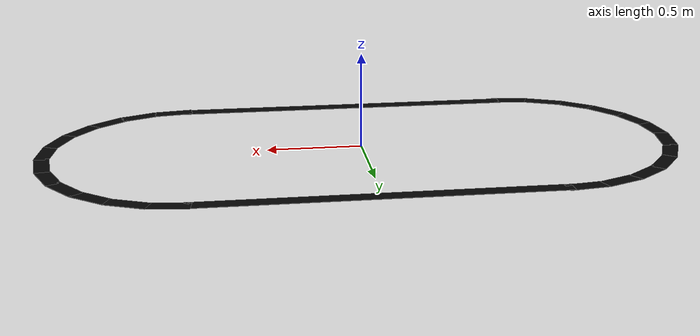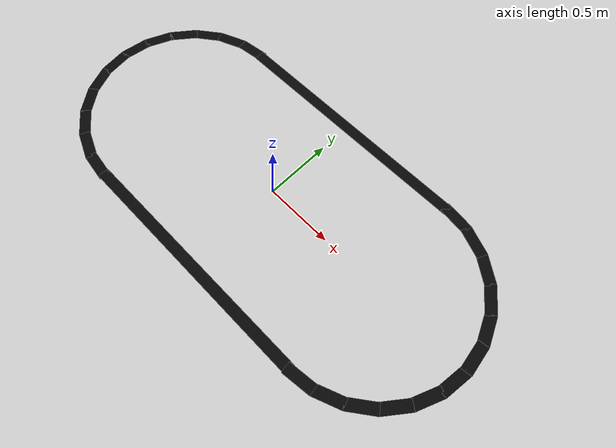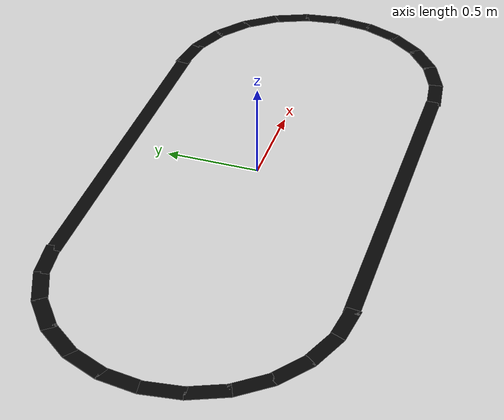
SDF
<?xml version="1.0"?>
<sdf version="1.8">
  <model name="line_track_racetrack">
    <static>true</static>
    <link name="track">
      <visual name='seg_000'>
        <pose>0.000000 0.750000 0.001000 0.000000 0.000000 0.000000</pose>
        <geometry>
          <box>
            <size>1.854000 0.080000 0.002000</size>
          </box>
        </geometry>
      <material>
        <ambient>0.02 0.02 0.02 1</ambient>
        <diffuse>0.02 0.02 0.02 1</diffuse>
        <specular>0.0 0.0 0.0 1</specular>
      </material>
      </visual>
      <visual name='seg_001'>
        <pose>0.000000 -0.750000 0.001000 0.000000 0.000000 3.141593</pose>
        <geometry>
          <box>
            <size>1.854000 0.080000 0.002000</size>
          </box>
        </geometry>
      <material>
        <ambient>0.02 0.02 0.02 1</ambient>
        <diffuse>0.02 0.02 0.02 1</diffuse>
        <specular>0.0 0.0 0.0 1</specular>
      </material>
      </visual>
      <visual name='seg_002'>
        <pose>0.997895 -0.743584 0.001000 0.000000 0.000000 0.130900</pose>
        <geometry>
          <box>
            <size>0.212058 0.080000 0.002000</size>
          </box>
        </geometry>
      <material>
        <ambient>0.02 0.02 0.02 1</ambient>
        <diffuse>0.02 0.02 0.02 1</diffuse>
        <specular>0.0 0.0 0.0 1</specular>
      </material>
      </visual>
      <visual name='seg_003'>
        <pose>1.187013 -0.692910 0.001000 0.000000 0.000000 0.392699</pose>
        <geometry>
          <box>
            <size>0.212058 0.080000 0.002000</size>
          </box>
        </geometry>
      <material>
        <ambient>0.02 0.02 0.02 1</ambient>
        <diffuse>0.02 0.02 0.02 1</diffuse>
        <specular>0.0 0.0 0.0 1</specular>
      </material>
      </visual>
      <visual name='seg_004'>
        <pose>1.356571 -0.595015 0.001000 0.000000 0.000000 0.654498</pose>
        <geometry>
          <box>
            <size>0.212058 0.080000 0.002000</size>
          </box>
        </geometry>
      <material>
        <ambient>0.02 0.02 0.02 1</ambient>
        <diffuse>0.02 0.02 0.02 1</diffuse>
        <specular>0.0 0.0 0.0 1</specular>
      </material>
      </visual>
      <visual name='seg_005'>
        <pose>1.495015 -0.456571 0.001000 0.000000 0.000000 0.916298</pose>
        <geometry>
          <box>
            <size>0.212058 0.080000 0.002000</size>
          </box>
        </geometry>
      <material>
        <ambient>0.02 0.02 0.02 1</ambient>
        <diffuse>0.02 0.02 0.02 1</diffuse>
        <specular>0.0 0.0 0.0 1</specular>
      </material>
      </visual>
      <visual name='seg_006'>
        <pose>1.592910 -0.287013 0.001000 0.000000 0.000000 1.178097</pose>
        <geometry>
          <box>
            <size>0.212058 0.080000 0.002000</size>
          </box>
        </geometry>
      <material>
        <ambient>0.02 0.02 0.02 1</ambient>
        <diffuse>0.02 0.02 0.02 1</diffuse>
        <specular>0.0 0.0 0.0 1</specular>
      </material>
      </visual>
      <visual name='seg_007'>
        <pose>1.643584 -0.097895 0.001000 0.000000 0.000000 1.439897</pose>
        <geometry>
          <box>
            <size>0.212058 0.080000 0.002000</size>
          </box>
        </geometry>
      <material>
        <ambient>0.02 0.02 0.02 1</ambient>
        <diffuse>0.02 0.02 0.02 1</diffuse>
        <specular>0.0 0.0 0.0 1</specular>
      </material>
      </visual>
      <visual name='seg_008'>
        <pose>1.643584 0.097895 0.001000 0.000000 0.000000 1.701696</pose>
        <geometry>
          <box>
            <size>0.212058 0.080000 0.002000</size>
          </box>
        </geometry>
      <material>
        <ambient>0.02 0.02 0.02 1</ambient>
        <diffuse>0.02 0.02 0.02 1</diffuse>
        <specular>0.0 0.0 0.0 1</specular>
      </material>
      </visual>
      <visual name='seg_009'>
        <pose>1.592910 0.287013 0.001000 0.000000 0.000000 1.963495</pose>
        <geometry>
          <box>
            <size>0.212058 0.080000 0.002000</size>
          </box>
        </geometry>
      <material>
        <ambient>0.02 0.02 0.02 1</ambient>
        <diffuse>0.02 0.02 0.02 1</diffuse>
        <specular>0.0 0.0 0.0 1</specular>
      </material>
      </visual>
      <visual name='seg_010'>
        <pose>1.495015 0.456571 0.001000 0.000000 0.000000 2.225295</pose>
        <geometry>
          <box>
            <size>0.212058 0.080000 0.002000</size>
          </box>
        </geometry>
      <material>
        <ambient>0.02 0.02 0.02 1</ambient>
        <diffuse>0.02 0.02 0.02 1</diffuse>
        <specular>0.0 0.0 0.0 1</specular>
      </material>
      </visual>
      <visual name='seg_011'>
        <pose>1.356571 0.595015 0.001000 0.000000 0.000000 2.487094</pose>
        <geometry>
          <box>
            <size>0.212058 0.080000 0.002000</size>
          </box>
        </geometry>
      <material>
        <ambient>0.02 0.02 0.02 1</ambient>
        <diffuse>0.02 0.02 0.02 1</diffuse>
        <specular>0.0 0.0 0.0 1</specular>
      </material>
      </visual>
      <visual name='seg_012'>
        <pose>1.187013 0.692910 0.001000 0.000000 0.000000 2.748894</pose>
        <geometry>
          <box>
            <size>0.212058 0.080000 0.002000</size>
          </box>
        </geometry>
      <material>
        <ambient>0.02 0.02 0.02 1</ambient>
        <diffuse>0.02 0.02 0.02 1</diffuse>
        <specular>0.0 0.0 0.0 1</specular>
      </material>
      </visual>
      <visual name='seg_013'>
        <pose>0.997895 0.743584 0.001000 0.000000 0.000000 3.010693</pose>
        <geometry>
          <box>
            <size>0.212058 0.080000 0.002000</size>
          </box>
        </geometry>
      <material>
        <ambient>0.02 0.02 0.02 1</ambient>
        <diffuse>0.02 0.02 0.02 1</diffuse>
        <specular>0.0 0.0 0.0 1</specular>
      </material>
      </visual>
      <visual name='seg_014'>
        <pose>-0.997895 0.743584 0.001000 0.000000 0.000000 3.272492</pose>
        <geometry>
          <box>
            <size>0.212058 0.080000 0.002000</size>
          </box>
        </geometry>
      <material>
        <ambient>0.02 0.02 0.02 1</ambient>
        <diffuse>0.02 0.02 0.02 1</diffuse>
        <specular>0.0 0.0 0.0 1</specular>
      </material>
      </visual>
      <visual name='seg_015'>
        <pose>-1.187013 0.692910 0.001000 0.000000 0.000000 3.534292</pose>
        <geometry>
          <box>
            <size>0.212058 0.080000 0.002000</size>
          </box>
        </geometry>
      <material>
        <ambient>0.02 0.02 0.02 1</ambient>
        <diffuse>0.02 0.02 0.02 1</diffuse>
        <specular>0.0 0.0 0.0 1</specular>
      </material>
      </visual>
      <visual name='seg_016'>
        <pose>-1.356571 0.595015 0.001000 0.000000 0.000000 3.796091</pose>
        <geometry>
          <box>
            <size>0.212058 0.080000 0.002000</size>
          </box>
        </geometry>
      <material>
        <ambient>0.02 0.02 0.02 1</ambient>
        <diffuse>0.02 0.02 0.02 1</diffuse>
        <specular>0.0 0.0 0.0 1</specular>
      </material>
      </visual>
      <visual name='seg_017'>
        <pose>-1.495015 0.456571 0.001000 0.000000 0.000000 4.057891</pose>
        <geometry>
          <box>
            <size>0.212058 0.080000 0.002000</size>
          </box>
        </geometry>
      <material>
        <ambient>0.02 0.02 0.02 1</ambient>
        <diffuse>0.02 0.02 0.02 1</diffuse>
        <specular>0.0 0.0 0.0 1</specular>
      </material>
      </visual>
      <visual name='seg_018'>
        <pose>-1.592910 0.287013 0.001000 0.000000 0.000000 4.319690</pose>
        <geometry>
          <box>
            <size>0.212058 0.080000 0.002000</size>
          </box>
        </geometry>
      <material>
        <ambient>0.02 0.02 0.02 1</ambient>
        <diffuse>0.02 0.02 0.02 1</diffuse>
        <specular>0.0 0.0 0.0 1</specular>
      </material>
      </visual>
      <visual name='seg_019'>
        <pose>-1.643584 0.097895 0.001000 0.000000 0.000000 4.581489</pose>
        <geometry>
          <box>
            <size>0.212058 0.080000 0.002000</size>
          </box>
        </geometry>
      <material>
        <ambient>0.02 0.02 0.02 1</ambient>
        <diffuse>0.02 0.02 0.02 1</diffuse>
        <specular>0.0 0.0 0.0 1</specular>
      </material>
      </visual>
      <visual name='seg_020'>
        <pose>-1.643584 -0.097895 0.001000 0.000000 0.000000 4.843289</pose>
        <geometry>
          <box>
            <size>0.212058 0.080000 0.002000</size>
          </box>
        </geometry>
      <material>
        <ambient>0.02 0.02 0.02 1</ambient>
        <diffuse>0.02 0.02 0.02 1</diffuse>
        <specular>0.0 0.0 0.0 1</specular>
      </material>
      </visual>
      <visual name='seg_021'>
        <pose>-1.592910 -0.287013 0.001000 0.000000 0.000000 5.105088</pose>
        <geometry>
          <box>
            <size>0.212058 0.080000 0.002000</size>
          </box>
        </geometry>
      <material>
        <ambient>0.02 0.02 0.02 1</ambient>
        <diffuse>0.02 0.02 0.02 1</diffuse>
        <specular>0.0 0.0 0.0 1</specular>
      </material>
      </visual>
      <visual name='seg_022'>
        <pose>-1.495015 -0.456571 0.001000 0.000000 0.000000 5.366887</pose>
        <geometry>
          <box>
            <size>0.212058 0.080000 0.002000</size>
          </box>
        </geometry>
      <material>
        <ambient>0.02 0.02 0.02 1</ambient>
        <diffuse>0.02 0.02 0.02 1</diffuse>
        <specular>0.0 0.0 0.0 1</specular>
      </material>
      </visual>
      <visual name='seg_023'>
        <pose>-1.356571 -0.595015 0.001000 0.000000 0.000000 5.628687</pose>
        <geometry>
          <box>
            <size>0.212058 0.080000 0.002000</size>
          </box>
        </geometry>
      <material>
        <ambient>0.02 0.02 0.02 1</ambient>
        <diffuse>0.02 0.02 0.02 1</diffuse>
        <specular>0.0 0.0 0.0 1</specular>
      </material>
      </visual>
      <visual name='seg_024'>
        <pose>-1.187013 -0.692910 0.001000 0.000000 0.000000 5.890486</pose>
        <geometry>
          <box>
            <size>0.212058 0.080000 0.002000</size>
          </box>
        </geometry>
      <material>
        <ambient>0.02 0.02 0.02 1</ambient>
        <diffuse>0.02 0.02 0.02 1</diffuse>
        <specular>0.0 0.0 0.0 1</specular>
      </material>
      </visual>
      <visual name='seg_025'>
        <pose>-0.997895 -0.743584 0.001000 0.000000 0.000000 6.152286</pose>
        <geometry>
          <box>
            <size>0.212058 0.080000 0.002000</size>
          </box>
        </geometry>
      <material>
        <ambient>0.02 0.02 0.02 1</ambient>
        <diffuse>0.02 0.02 0.02 1</diffuse>
        <specular>0.0 0.0 0.0 1</specular>
      </material>
      </visual>
    </link>
  </model>
</sdf>
